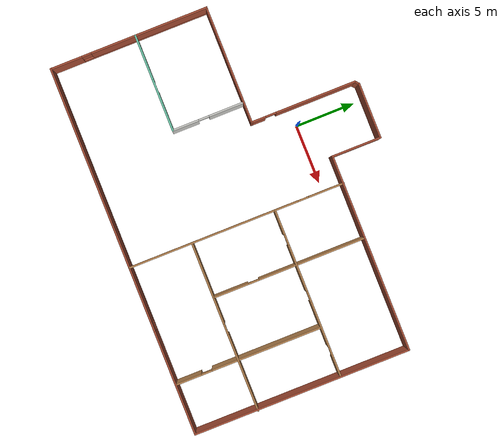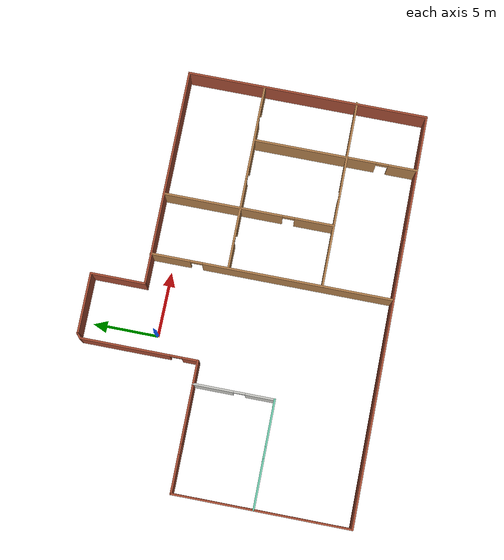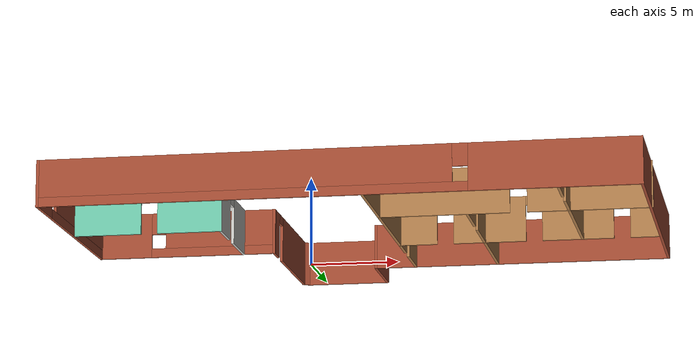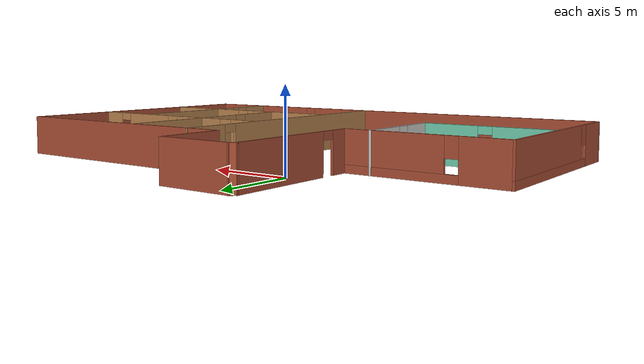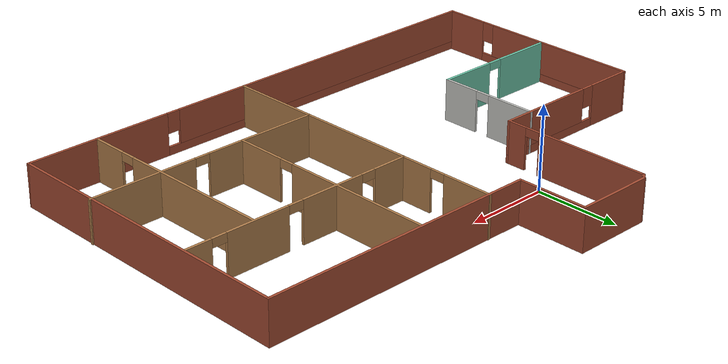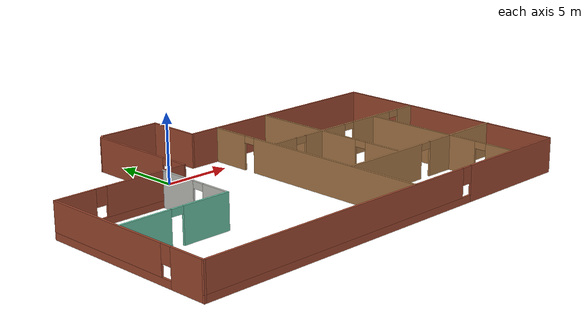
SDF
<?xml version='1.0'?>
<sdf version='1.6'>
  <model name='strange_room_project_1'>
    <pose frame=''>4.41122 -5.53969 0 0 -0 0</pose>
    <link name='Wall_1'>
      <collision name='Wall_1_Collision'>
        <geometry>
          <box>
            <size>4.75 0.15 2.5</size>
          </box>
        </geometry>
        <pose frame=''>0 0 1.25 0 -0 0</pose>
      </collision>
      <visual name='Wall_1_Visual'>
        <pose frame=''>0 0 1.25 0 -0 0</pose>
        <geometry>
          <box>
            <size>4.75 0.15 2.5</size>
          </box>
        </geometry>
        <material>
          <script>
            <uri>file://media/materials/scripts/gazebo.material</uri>
            <name>Gazebo/Bricks</name>
          </script>
          <ambient>0.435294 0.796078 0.67451 1</ambient>
        </material>
        <meta>
          <layer>0</layer>
        </meta>
      </visual>
      <pose frame=''>-3.26123 11.2097 0 0 -0 0</pose>
    </link>
    <link name='Wall_10'>
      <collision name='Wall_10_Collision'>
        <geometry>
          <box>
            <size>0.540512 0.15 2.5</size>
          </box>
        </geometry>
        <pose frame=''>0 0 1.25 0 -0 0</pose>
      </collision>
      <visual name='Wall_10_Visual'>
        <pose frame=''>0 0 1.25 0 -0 0</pose>
        <geometry>
          <box>
            <size>0.540512 0.15 2.5</size>
          </box>
        </geometry>
        <material>
          <script>
            <uri>file://media/materials/scripts/gazebo.material</uri>
            <name>Gazebo/Bricks</name>
          </script>
          <ambient>0.435294 0.796078 0.67451 1</ambient>
        </material>
        <meta>
          <layer>0</layer>
        </meta>
      </visual>
      <pose frame=''>-5.71122 11.0847 0 0 -0 0.694738</pose>
    </link>
    <link name='Wall_12'>
      <pose frame=''>-7.58378 -0.937122 0 0 0 -1.5708</pose>
      <visual name='Wall_12_Visual_0'>
        <pose frame=''>-1.59262 0 1.25 0 -0 0</pose>
        <geometry>
          <box>
            <size>3.06475 0.15 2.5</size>
          </box>
        </geometry>
        <material>
          <script>
            <uri>file://media/materials/scripts/gazebo.material</uri>
            <name>Gazebo/CeilingTiled</name>
          </script>
          <ambient>0.435294 0.796078 0.67451 1</ambient>
        </material>
        <meta>
          <layer>0</layer>
        </meta>
      </visual>
      <collision name='Wall_12_Collision_0'>
        <geometry>
          <box>
            <size>3.06475 0.15 2.5</size>
          </box>
        </geometry>
        <pose frame=''>-1.59262 0 1.25 0 -0 0</pose>
      </collision>
      <visual name='Wall_12_Visual_1'>
        <pose frame=''>1.98238 0 1.25 0 -0 0</pose>
        <geometry>
          <box>
            <size>2.28525 0.15 2.5</size>
          </box>
        </geometry>
        <material>
          <script>
            <uri>file://media/materials/scripts/gazebo.material</uri>
            <name>Gazebo/CeilingTiled</name>
          </script>
          <ambient>0.435294 0.796078 0.67451 1</ambient>
        </material>
        <meta>
          <layer>0</layer>
        </meta>
      </visual>
      <collision name='Wall_12_Collision_1'>
        <geometry>
          <box>
            <size>2.28525 0.15 2.5</size>
          </box>
        </geometry>
        <pose frame=''>1.98238 0 1.25 0 -0 0</pose>
      </collision>
      <visual name='Wall_12_Visual_2'>
        <pose frame=''>0.389755 0 2.25 0 -0 0</pose>
        <geometry>
          <box>
            <size>0.9 0.15 0.5</size>
          </box>
        </geometry>
        <material>
          <script>
            <uri>file://media/materials/scripts/gazebo.material</uri>
            <name>Gazebo/CeilingTiled</name>
          </script>
          <ambient>0.435294 0.796078 0.67451 1</ambient>
        </material>
        <meta>
          <layer>0</layer>
        </meta>
      </visual>
      <collision name='Wall_12_Collision_2'>
        <geometry>
          <box>
            <size>0.9 0.15 0.5</size>
          </box>
        </geometry>
        <pose frame=''>0.389755 0 2.25 0 -0 0</pose>
      </collision>
    </link>
    <link name='Wall_15'>
      <pose frame=''>-11.6338 -3.98712 0 0 -0 3.14159</pose>
      <visual name='Wall_15_Visual_0'>
        <pose frame=''>-2.35227 0 1.25 0 -0 0</pose>
        <geometry>
          <box>
            <size>3.54546 0.15 2.5</size>
          </box>
        </geometry>
        <material>
          <script>
            <uri>file://media/materials/scripts/gazebo.material</uri>
            <name>Gazebo/Grey</name>
          </script>
          <ambient>0.435294 0.796078 0.67451 1</ambient>
        </material>
        <meta>
          <layer>0</layer>
        </meta>
      </visual>
      <collision name='Wall_15_Collision_0'>
        <geometry>
          <box>
            <size>3.54546 0.15 2.5</size>
          </box>
        </geometry>
        <pose frame=''>-2.35227 0 1.25 0 -0 0</pose>
      </collision>
      <visual name='Wall_15_Visual_1'>
        <pose frame=''>2.22273 0 1.25 0 -0 0</pose>
        <geometry>
          <box>
            <size>3.80455 0.15 2.5</size>
          </box>
        </geometry>
        <material>
          <script>
            <uri>file://media/materials/scripts/gazebo.material</uri>
            <name>Gazebo/Grey</name>
          </script>
          <ambient>0.435294 0.796078 0.67451 1</ambient>
        </material>
        <meta>
          <layer>0</layer>
        </meta>
      </visual>
      <collision name='Wall_15_Collision_1'>
        <geometry>
          <box>
            <size>3.80455 0.15 2.5</size>
          </box>
        </geometry>
        <pose frame=''>2.22273 0 1.25 0 -0 0</pose>
      </collision>
      <visual name='Wall_15_Visual_2'>
        <pose frame=''>-0.129545 0 2.25 0 -0 0</pose>
        <geometry>
          <box>
            <size>0.9 0.15 0.5</size>
          </box>
        </geometry>
        <material>
          <script>
            <uri>file://media/materials/scripts/gazebo.material</uri>
            <name>Gazebo/Grey</name>
          </script>
          <ambient>0.435294 0.796078 0.67451 1</ambient>
        </material>
        <meta>
          <layer>0</layer>
        </meta>
      </visual>
      <collision name='Wall_15_Collision_2'>
        <geometry>
          <box>
            <size>0.9 0.15 0.5</size>
          </box>
        </geometry>
        <pose frame=''>-0.129545 0 2.25 0 -0 0</pose>
      </collision>
    </link>
    <link name='Wall_17'>
      <pose frame=''>1.35237 -2.03802 0 0 0 -1.5708</pose>
      <visual name='Wall_17_Visual_0'>
        <pose frame=''>-7.7112 0 1.25 0 -0 0</pose>
        <geometry>
          <box>
            <size>3.07761 0.15 2.5</size>
          </box>
        </geometry>
        <material>
          <script>
            <uri>file://media/materials/scripts/gazebo.material</uri>
            <name>Gazebo/Wood</name>
          </script>
          <ambient>0.435294 0.796078 0.67451 1</ambient>
        </material>
        <meta>
          <layer>0</layer>
        </meta>
      </visual>
      <collision name='Wall_17_Collision_0'>
        <geometry>
          <box>
            <size>3.07761 0.15 2.5</size>
          </box>
        </geometry>
        <pose frame=''>-7.7112 0 1.25 0 -0 0</pose>
      </collision>
      <visual name='Wall_17_Visual_1'>
        <pose frame=''>1.9888 0 1.25 0 -0 0</pose>
        <geometry>
          <box>
            <size>14.5224 0.15 2.5</size>
          </box>
        </geometry>
        <material>
          <script>
            <uri>file://media/materials/scripts/gazebo.material</uri>
            <name>Gazebo/Wood</name>
          </script>
          <ambient>0.435294 0.796078 0.67451 1</ambient>
        </material>
        <meta>
          <layer>0</layer>
        </meta>
      </visual>
      <collision name='Wall_17_Collision_1'>
        <geometry>
          <box>
            <size>14.5224 0.15 2.5</size>
          </box>
        </geometry>
        <pose frame=''>1.9888 0 1.25 0 -0 0</pose>
      </collision>
      <visual name='Wall_17_Visual_2'>
        <pose frame=''>-5.72239 0 2.25 0 -0 0</pose>
        <geometry>
          <box>
            <size>0.9 0.15 0.5</size>
          </box>
        </geometry>
        <material>
          <script>
            <uri>file://media/materials/scripts/gazebo.material</uri>
            <name>Gazebo/Wood</name>
          </script>
          <ambient>0.435294 0.796078 0.67451 1</ambient>
        </material>
        <meta>
          <layer>0</layer>
        </meta>
      </visual>
      <collision name='Wall_17_Collision_2'>
        <geometry>
          <box>
            <size>0.9 0.15 0.5</size>
          </box>
        </geometry>
        <pose frame=''>-5.72239 0 2.25 0 -0 0</pose>
      </collision>
    </link>
    <link name='Wall_19'>
      <pose frame=''>8.46168 1.25779 0 0 -0 0</pose>
      <visual name='Wall_19_Visual_0'>
        <pose frame=''>-6.07739 0 1.25 0 -0 0</pose>
        <geometry>
          <box>
            <size>2.09521 0.15 2.5</size>
          </box>
        </geometry>
        <material>
          <script>
            <uri>file://media/materials/scripts/gazebo.material</uri>
            <name>Gazebo/Wood</name>
          </script>
          <ambient>0.435294 0.796078 0.67451 1</ambient>
        </material>
        <meta>
          <layer>0</layer>
        </meta>
      </visual>
      <collision name='Wall_19_Collision_0'>
        <geometry>
          <box>
            <size>2.09521 0.15 2.5</size>
          </box>
        </geometry>
        <pose frame=''>-6.07739 0 1.25 0 -0 0</pose>
      </collision>
      <visual name='Wall_19_Visual_1'>
        <pose frame=''>-2.13756 0 1.25 0 -0 0</pose>
        <geometry>
          <box>
            <size>3.98446 0.15 2.5</size>
          </box>
        </geometry>
        <material>
          <script>
            <uri>file://media/materials/scripts/gazebo.material</uri>
            <name>Gazebo/Wood</name>
          </script>
          <ambient>0.435294 0.796078 0.67451 1</ambient>
        </material>
        <meta>
          <layer>0</layer>
        </meta>
      </visual>
      <collision name='Wall_19_Collision_1'>
        <geometry>
          <box>
            <size>3.98446 0.15 2.5</size>
          </box>
        </geometry>
        <pose frame=''>-2.13756 0 1.25 0 -0 0</pose>
      </collision>
      <visual name='Wall_19_Visual_2'>
        <pose frame=''>2.70297 0 1.25 0 -0 0</pose>
        <geometry>
          <box>
            <size>3.8966 0.15 2.5</size>
          </box>
        </geometry>
        <material>
          <script>
            <uri>file://media/materials/scripts/gazebo.material</uri>
            <name>Gazebo/Wood</name>
          </script>
          <ambient>0.435294 0.796078 0.67451 1</ambient>
        </material>
        <meta>
          <layer>0</layer>
        </meta>
      </visual>
      <collision name='Wall_19_Collision_2'>
        <geometry>
          <box>
            <size>3.8966 0.15 2.5</size>
          </box>
        </geometry>
        <pose frame=''>2.70297 0 1.25 0 -0 0</pose>
      </collision>
      <visual name='Wall_19_Visual_3'>
        <pose frame=''>6.33814 0 1.25 0 -0 0</pose>
        <geometry>
          <box>
            <size>1.57373 0.15 2.5</size>
          </box>
        </geometry>
        <material>
          <script>
            <uri>file://media/materials/scripts/gazebo.material</uri>
            <name>Gazebo/Wood</name>
          </script>
          <ambient>0.435294 0.796078 0.67451 1</ambient>
        </material>
        <meta>
          <layer>0</layer>
        </meta>
      </visual>
      <collision name='Wall_19_Collision_3'>
        <geometry>
          <box>
            <size>1.57373 0.15 2.5</size>
          </box>
        </geometry>
        <pose frame=''>6.33814 0 1.25 0 -0 0</pose>
      </collision>
      <visual name='Wall_19_Visual_4'>
        <pose frame=''>-4.57979 0 2.25 0 -0 0</pose>
        <geometry>
          <box>
            <size>0.9 0.15 0.5</size>
          </box>
        </geometry>
        <material>
          <script>
            <uri>file://media/materials/scripts/gazebo.material</uri>
            <name>Gazebo/Wood</name>
          </script>
          <ambient>0.435294 0.796078 0.67451 1</ambient>
        </material>
        <meta>
          <layer>0</layer>
        </meta>
      </visual>
      <collision name='Wall_19_Collision_4'>
        <geometry>
          <box>
            <size>0.9 0.15 0.5</size>
          </box>
        </geometry>
        <pose frame=''>-4.57979 0 2.25 0 -0 0</pose>
      </collision>
      <visual name='Wall_19_Visual_5'>
        <pose frame=''>0.304668 0 2.25 0 -0 0</pose>
        <geometry>
          <box>
            <size>0.9 0.15 0.5</size>
          </box>
        </geometry>
        <material>
          <script>
            <uri>file://media/materials/scripts/gazebo.material</uri>
            <name>Gazebo/Wood</name>
          </script>
          <ambient>0.435294 0.796078 0.67451 1</ambient>
        </material>
        <meta>
          <layer>0</layer>
        </meta>
      </visual>
      <collision name='Wall_19_Collision_5'>
        <geometry>
          <box>
            <size>0.9 0.15 0.5</size>
          </box>
        </geometry>
        <pose frame=''>0.304668 0 2.25 0 -0 0</pose>
      </collision>
      <visual name='Wall_19_Visual_6'>
        <pose frame=''>5.10127 0 2.25 0 -0 0</pose>
        <geometry>
          <box>
            <size>0.9 0.15 0.5</size>
          </box>
        </geometry>
        <material>
          <script>
            <uri>file://media/materials/scripts/gazebo.material</uri>
            <name>Gazebo/Wood</name>
          </script>
          <ambient>0.435294 0.796078 0.67451 1</ambient>
        </material>
        <meta>
          <layer>0</layer>
        </meta>
      </visual>
      <collision name='Wall_19_Collision_6'>
        <geometry>
          <box>
            <size>0.9 0.15 0.5</size>
          </box>
        </geometry>
        <pose frame=''>5.10127 0 2.25 0 -0 0</pose>
      </collision>
    </link>
    <link name='Wall_2'>
      <collision name='Wall_2_Collision'>
        <geometry>
          <box>
            <size>4.25 0.15 2.5</size>
          </box>
        </geometry>
        <pose frame=''>0 0 1.25 0 -0 0</pose>
      </collision>
      <visual name='Wall_2_Visual'>
        <pose frame=''>0 0 1.25 0 -0 0</pose>
        <geometry>
          <box>
            <size>4.25 0.15 2.5</size>
          </box>
        </geometry>
        <material>
          <script>
            <uri>file://media/materials/scripts/gazebo.material</uri>
            <name>Gazebo/Bricks</name>
          </script>
          <ambient>0.435294 0.796078 0.67451 1</ambient>
        </material>
        <meta>
          <layer>0</layer>
        </meta>
      </visual>
      <pose frame=''>-0.961225 9.15968 0 0 0 -1.5708</pose>
    </link>
    <link name='Wall_3'>
      <collision name='Wall_3_Collision'>
        <geometry>
          <box>
            <size>16.75 0.15 2.5</size>
          </box>
        </geometry>
        <pose frame=''>0 0 1.25 0 -0 0</pose>
      </collision>
      <visual name='Wall_3_Visual'>
        <pose frame=''>0 0 1.25 0 -0 0</pose>
        <geometry>
          <box>
            <size>16.75 0.15 2.5</size>
          </box>
        </geometry>
        <material>
          <script>
            <uri>file://media/materials/scripts/gazebo.material</uri>
            <name>Gazebo/Bricks</name>
          </script>
          <ambient>0.435294 0.796078 0.67451 1</ambient>
        </material>
        <meta>
          <layer>0</layer>
        </meta>
      </visual>
      <pose frame=''>7.33878 7.10969 0 0 -0 0</pose>
    </link>
    <link name='Wall_4'>
      <collision name='Wall_4_Collision'>
        <geometry>
          <box>
            <size>18.5 0.15 2.5</size>
          </box>
        </geometry>
        <pose frame=''>0 0 1.25 0 -0 0</pose>
      </collision>
      <visual name='Wall_4_Visual'>
        <pose frame=''>0 0 1.25 0 -0 0</pose>
        <geometry>
          <box>
            <size>18.5 0.15 2.5</size>
          </box>
        </geometry>
        <material>
          <script>
            <uri>file://media/materials/scripts/gazebo.material</uri>
            <name>Gazebo/Bricks</name>
          </script>
          <ambient>0.435294 0.796078 0.67451 1</ambient>
        </material>
        <meta>
          <layer>0</layer>
        </meta>
      </visual>
      <pose frame=''>15.6388 -2.06532 0 0 0 -1.5708</pose>
    </link>
    <link name='Wall_5'>
      <pose frame=''>-0.036225 -11.2403 0 0 -0 3.14159</pose>
      <visual name='Wall_5_Visual_0'>
        <pose frame=''>-11.2976 0 1.25 0 -0 0</pose>
        <geometry>
          <box>
            <size>8.90478 0.15 2.5</size>
          </box>
        </geometry>
        <material>
          <script>
            <uri>file://media/materials/scripts/gazebo.material</uri>
            <name>Gazebo/Bricks</name>
          </script>
          <ambient>0.435294 0.796078 0.67451 1</ambient>
        </material>
        <meta>
          <layer>0</layer>
        </meta>
      </visual>
      <collision name='Wall_5_Collision_0'>
        <geometry>
          <box>
            <size>8.90478 0.15 2.5</size>
          </box>
        </geometry>
        <pose frame=''>-11.2976 0 1.25 0 -0 0</pose>
      </collision>
      <visual name='Wall_5_Visual_1'>
        <pose frame=''>4.45239 0 0.25 0 -0 0</pose>
        <geometry>
          <box>
            <size>22.5952 0.15 0.5</size>
          </box>
        </geometry>
        <material>
          <script>
            <uri>file://media/materials/scripts/gazebo.material</uri>
            <name>Gazebo/Bricks</name>
          </script>
          <ambient>0.435294 0.796078 0.67451 1</ambient>
        </material>
        <meta>
          <layer>0</layer>
        </meta>
      </visual>
      <collision name='Wall_5_Collision_1'>
        <geometry>
          <box>
            <size>22.5952 0.15 0.5</size>
          </box>
        </geometry>
        <pose frame=''>4.45239 0 0.25 0 -0 0</pose>
      </collision>
      <visual name='Wall_5_Visual_2'>
        <pose frame=''>4.85239 0 1.5 0 -0 0</pose>
        <geometry>
          <box>
            <size>21.7952 0.15 2</size>
          </box>
        </geometry>
        <material>
          <script>
            <uri>file://media/materials/scripts/gazebo.material</uri>
            <name>Gazebo/Bricks</name>
          </script>
          <ambient>0.435294 0.796078 0.67451 1</ambient>
        </material>
        <meta>
          <layer>0</layer>
        </meta>
      </visual>
      <collision name='Wall_5_Collision_2'>
        <geometry>
          <box>
            <size>21.7952 0.15 2</size>
          </box>
        </geometry>
        <pose frame=''>4.85239 0 1.5 0 -0 0</pose>
      </collision>
      <visual name='Wall_5_Visual_3'>
        <pose frame=''>-6.44522 0 1.9 0 -0 0</pose>
        <geometry>
          <box>
            <size>0.8 0.15 1.2</size>
          </box>
        </geometry>
        <material>
          <script>
            <uri>file://media/materials/scripts/gazebo.material</uri>
            <name>Gazebo/Bricks</name>
          </script>
          <ambient>0.435294 0.796078 0.67451 1</ambient>
        </material>
        <meta>
          <layer>0</layer>
        </meta>
      </visual>
      <collision name='Wall_5_Collision_3'>
        <geometry>
          <box>
            <size>0.8 0.15 1.2</size>
          </box>
        </geometry>
        <pose frame=''>-6.44522 0 1.9 0 -0 0</pose>
      </collision>
    </link>
    <link name='Wall_6'>
      <pose frame=''>-15.7112 -4.56531 0 0 -0 1.5708</pose>
      <visual name='Wall_6_Visual_0'>
        <pose frame=''>-5.38753 0 1.25 0 -0 0</pose>
        <geometry>
          <box>
            <size>2.72495 0.15 2.5</size>
          </box>
        </geometry>
        <material>
          <script>
            <uri>file://media/materials/scripts/gazebo.material</uri>
            <name>Gazebo/Bricks</name>
          </script>
          <ambient>0.435294 0.796078 0.67451 1</ambient>
        </material>
        <meta>
          <layer>0</layer>
        </meta>
      </visual>
      <collision name='Wall_6_Collision_0'>
        <geometry>
          <box>
            <size>2.72495 0.15 2.5</size>
          </box>
        </geometry>
        <pose frame=''>-5.38753 0 1.25 0 -0 0</pose>
      </collision>
      <visual name='Wall_6_Visual_1'>
        <pose frame=''>1.36247 0 0.25 0 -0 0</pose>
        <geometry>
          <box>
            <size>10.7751 0.15 0.5</size>
          </box>
        </geometry>
        <material>
          <script>
            <uri>file://media/materials/scripts/gazebo.material</uri>
            <name>Gazebo/Bricks</name>
          </script>
          <ambient>0.435294 0.796078 0.67451 1</ambient>
        </material>
        <meta>
          <layer>0</layer>
        </meta>
      </visual>
      <collision name='Wall_6_Collision_1'>
        <geometry>
          <box>
            <size>10.7751 0.15 0.5</size>
          </box>
        </geometry>
        <pose frame=''>1.36247 0 0.25 0 -0 0</pose>
      </collision>
      <visual name='Wall_6_Visual_2'>
        <pose frame=''>1.76247 0 1.5 0 -0 0</pose>
        <geometry>
          <box>
            <size>9.97505 0.15 2</size>
          </box>
        </geometry>
        <material>
          <script>
            <uri>file://media/materials/scripts/gazebo.material</uri>
            <name>Gazebo/Bricks</name>
          </script>
          <ambient>0.435294 0.796078 0.67451 1</ambient>
        </material>
        <meta>
          <layer>0</layer>
        </meta>
      </visual>
      <collision name='Wall_6_Collision_2'>
        <geometry>
          <box>
            <size>9.97505 0.15 2</size>
          </box>
        </geometry>
        <pose frame=''>1.76247 0 1.5 0 -0 0</pose>
      </collision>
      <visual name='Wall_6_Visual_3'>
        <pose frame=''>-3.62505 0 1.9 0 -0 0</pose>
        <geometry>
          <box>
            <size>0.8 0.15 1.2</size>
          </box>
        </geometry>
        <material>
          <script>
            <uri>file://media/materials/scripts/gazebo.material</uri>
            <name>Gazebo/Bricks</name>
          </script>
          <ambient>0.435294 0.796078 0.67451 1</ambient>
        </material>
        <meta>
          <layer>0</layer>
        </meta>
      </visual>
      <collision name='Wall_6_Collision_3'>
        <geometry>
          <box>
            <size>0.8 0.15 1.2</size>
          </box>
        </geometry>
        <pose frame=''>-3.62505 0 1.9 0 -0 0</pose>
      </collision>
    </link>
    <link name='Wall_65'>
      <pose frame=''>8.53623 -5.87592 0 0 -0 3.14159</pose>
      <visual name='Wall_65_Visual_0'>
        <pose frame=''>-3.95776 0 1.25 0 -0 0</pose>
        <geometry>
          <box>
            <size>6.58449 0.15 2.5</size>
          </box>
        </geometry>
        <material>
          <script>
            <uri>file://media/materials/scripts/gazebo.material</uri>
            <name>Gazebo/Wood</name>
          </script>
          <ambient>0.435294 0.796078 0.67451 1</ambient>
        </material>
        <meta>
          <layer>0</layer>
        </meta>
      </visual>
      <collision name='Wall_65_Collision_0'>
        <geometry>
          <box>
            <size>6.58449 0.15 2.5</size>
          </box>
        </geometry>
        <pose frame=''>-3.95776 0 1.25 0 -0 0</pose>
      </collision>
      <visual name='Wall_65_Visual_1'>
        <pose frame=''>3.74224 0 1.25 0 -0 0</pose>
        <geometry>
          <box>
            <size>7.01551 0.15 2.5</size>
          </box>
        </geometry>
        <material>
          <script>
            <uri>file://media/materials/scripts/gazebo.material</uri>
            <name>Gazebo/Wood</name>
          </script>
          <ambient>0.435294 0.796078 0.67451 1</ambient>
        </material>
        <meta>
          <layer>0</layer>
        </meta>
      </visual>
      <collision name='Wall_65_Collision_1'>
        <geometry>
          <box>
            <size>7.01551 0.15 2.5</size>
          </box>
        </geometry>
        <pose frame=''>3.74224 0 1.25 0 -0 0</pose>
      </collision>
      <visual name='Wall_65_Visual_2'>
        <pose frame=''>-0.215513 0 2.25 0 -0 0</pose>
        <geometry>
          <box>
            <size>0.9 0.15 0.5</size>
          </box>
        </geometry>
        <material>
          <script>
            <uri>file://media/materials/scripts/gazebo.material</uri>
            <name>Gazebo/Wood</name>
          </script>
          <ambient>0.435294 0.796078 0.67451 1</ambient>
        </material>
        <meta>
          <layer>0</layer>
        </meta>
      </visual>
      <collision name='Wall_65_Collision_2'>
        <geometry>
          <box>
            <size>0.9 0.15 0.5</size>
          </box>
        </geometry>
        <pose frame=''>-0.215513 0 2.25 0 -0 0</pose>
      </collision>
    </link>
    <link name='Wall_7'>
      <pose frame=''>-10.7862 2.10968 0 0 -0 0</pose>
      <visual name='Wall_7_Visual_0'>
        <pose frame=''>-3.51411 0 1.25 0 -0 0</pose>
        <geometry>
          <box>
            <size>2.97177 0.15 2.5</size>
          </box>
        </geometry>
        <material>
          <script>
            <uri>file://media/materials/scripts/gazebo.material</uri>
            <name>Gazebo/Bricks</name>
          </script>
          <ambient>0.435294 0.796078 0.67451 1</ambient>
        </material>
        <meta>
          <layer>0</layer>
        </meta>
      </visual>
      <collision name='Wall_7_Collision_0'>
        <geometry>
          <box>
            <size>2.97177 0.15 2.5</size>
          </box>
        </geometry>
        <pose frame=''>-3.51411 0 1.25 0 -0 0</pose>
      </collision>
      <visual name='Wall_7_Visual_1'>
        <pose frame=''>1.48589 0 0.25 0 -0 0</pose>
        <geometry>
          <box>
            <size>7.02823 0.15 0.5</size>
          </box>
        </geometry>
        <material>
          <script>
            <uri>file://media/materials/scripts/gazebo.material</uri>
            <name>Gazebo/Bricks</name>
          </script>
          <ambient>0.435294 0.796078 0.67451 1</ambient>
        </material>
        <meta>
          <layer>0</layer>
        </meta>
      </visual>
      <collision name='Wall_7_Collision_1'>
        <geometry>
          <box>
            <size>7.02823 0.15 0.5</size>
          </box>
        </geometry>
        <pose frame=''>1.48589 0 0.25 0 -0 0</pose>
      </collision>
      <visual name='Wall_7_Visual_2'>
        <pose frame=''>1.88589 0 1.5 0 -0 0</pose>
        <geometry>
          <box>
            <size>6.22823 0.15 2</size>
          </box>
        </geometry>
        <material>
          <script>
            <uri>file://media/materials/scripts/gazebo.material</uri>
            <name>Gazebo/Bricks</name>
          </script>
          <ambient>0.435294 0.796078 0.67451 1</ambient>
        </material>
        <meta>
          <layer>0</layer>
        </meta>
      </visual>
      <collision name='Wall_7_Collision_2'>
        <geometry>
          <box>
            <size>6.22823 0.15 2</size>
          </box>
        </geometry>
        <pose frame=''>1.88589 0 1.5 0 -0 0</pose>
      </collision>
      <visual name='Wall_7_Visual_3'>
        <pose frame=''>-1.62823 0 1.9 0 -0 0</pose>
        <geometry>
          <box>
            <size>0.8 0.15 1.2</size>
          </box>
        </geometry>
        <material>
          <script>
            <uri>file://media/materials/scripts/gazebo.material</uri>
            <name>Gazebo/Bricks</name>
          </script>
          <ambient>0.435294 0.796078 0.67451 1</ambient>
        </material>
        <meta>
          <layer>0</layer>
        </meta>
      </visual>
      <collision name='Wall_7_Collision_3'>
        <geometry>
          <box>
            <size>0.8 0.15 1.2</size>
          </box>
        </geometry>
        <pose frame=''>-1.62823 0 1.9 0 -0 0</pose>
      </collision>
    </link>
    <link name='Wall_74'>
      <pose frame=''>11.3966 -5.06353 0 0 -0 1.5708</pose>
      <visual name='Wall_74_Visual_0'>
        <pose frame=''>-5.1078 0 1.25 0 -0 0</pose>
        <geometry>
          <box>
            <size>2.2844 0.15 2.5</size>
          </box>
        </geometry>
        <material>
          <script>
            <uri>file://media/materials/scripts/gazebo.material</uri>
            <name>Gazebo/Wood</name>
          </script>
          <ambient>0.435294 0.796078 0.67451 1</ambient>
        </material>
        <meta>
          <layer>0</layer>
        </meta>
      </visual>
      <collision name='Wall_74_Collision_0'>
        <geometry>
          <box>
            <size>2.2844 0.15 2.5</size>
          </box>
        </geometry>
        <pose frame=''>-5.1078 0 1.25 0 -0 0</pose>
      </collision>
      <visual name='Wall_74_Visual_1'>
        <pose frame=''>1.5922 0 1.25 0 -0 0</pose>
        <geometry>
          <box>
            <size>9.3156 0.15 2.5</size>
          </box>
        </geometry>
        <material>
          <script>
            <uri>file://media/materials/scripts/gazebo.material</uri>
            <name>Gazebo/Wood</name>
          </script>
          <ambient>0.435294 0.796078 0.67451 1</ambient>
        </material>
        <meta>
          <layer>0</layer>
        </meta>
      </visual>
      <collision name='Wall_74_Collision_1'>
        <geometry>
          <box>
            <size>9.3156 0.15 2.5</size>
          </box>
        </geometry>
        <pose frame=''>1.5922 0 1.25 0 -0 0</pose>
      </collision>
      <visual name='Wall_74_Visual_2'>
        <pose frame=''>-3.5156 0 2.25 0 -0 0</pose>
        <geometry>
          <box>
            <size>0.9 0.15 0.5</size>
          </box>
        </geometry>
        <material>
          <script>
            <uri>file://media/materials/scripts/gazebo.material</uri>
            <name>Gazebo/Wood</name>
          </script>
          <ambient>0.435294 0.796078 0.67451 1</ambient>
        </material>
        <meta>
          <layer>0</layer>
        </meta>
      </visual>
      <collision name='Wall_74_Collision_2'>
        <geometry>
          <box>
            <size>0.9 0.15 0.5</size>
          </box>
        </geometry>
        <pose frame=''>-3.5156 0 2.25 0 -0 0</pose>
      </collision>
    </link>
    <link name='Wall_76'>
      <pose frame=''>6.03149 0.555756 0 0 -0 1.5708</pose>
      <visual name='Wall_76_Visual_0'>
        <pose frame=''>-4.96159 0 1.25 0 -0 0</pose>
        <geometry>
          <box>
            <size>3.07682 0.15 2.5</size>
          </box>
        </geometry>
        <material>
          <script>
            <uri>file://media/materials/scripts/gazebo.material</uri>
            <name>Gazebo/Wood</name>
          </script>
          <ambient>0.435294 0.796078 0.67451 1</ambient>
        </material>
        <meta>
          <layer>0</layer>
        </meta>
      </visual>
      <collision name='Wall_76_Collision_0'>
        <geometry>
          <box>
            <size>3.07682 0.15 2.5</size>
          </box>
        </geometry>
        <pose frame=''>-4.96159 0 1.25 0 -0 0</pose>
      </collision>
      <visual name='Wall_76_Visual_1'>
        <pose frame=''>1.98841 0 1.25 0 -0 0</pose>
        <geometry>
          <box>
            <size>9.02318 0.15 2.5</size>
          </box>
        </geometry>
        <material>
          <script>
            <uri>file://media/materials/scripts/gazebo.material</uri>
            <name>Gazebo/Wood</name>
          </script>
          <ambient>0.435294 0.796078 0.67451 1</ambient>
        </material>
        <meta>
          <layer>0</layer>
        </meta>
      </visual>
      <collision name='Wall_76_Collision_1'>
        <geometry>
          <box>
            <size>9.02318 0.15 2.5</size>
          </box>
        </geometry>
        <pose frame=''>1.98841 0 1.25 0 -0 0</pose>
      </collision>
      <visual name='Wall_76_Visual_2'>
        <pose frame=''>-2.97318 0 2.25 0 -0 0</pose>
        <geometry>
          <box>
            <size>0.9 0.15 0.5</size>
          </box>
        </geometry>
        <material>
          <script>
            <uri>file://media/materials/scripts/gazebo.material</uri>
            <name>Gazebo/Wood</name>
          </script>
          <ambient>0.435294 0.796078 0.67451 1</ambient>
        </material>
        <meta>
          <layer>0</layer>
        </meta>
      </visual>
      <collision name='Wall_76_Collision_2'>
        <geometry>
          <box>
            <size>0.9 0.15 0.5</size>
          </box>
        </geometry>
        <pose frame=''>-2.97318 0 2.25 0 -0 0</pose>
      </collision>
    </link>
    <link name='Wall_9'>
      <pose frame=''>-5.86123 6.53468 0 0 -0 1.5708</pose>
      <visual name='Wall_9_Visual_0'>
        <pose frame=''>-3.86428 0 1.25 0 -0 0</pose>
        <geometry>
          <box>
            <size>1.27144 0.15 2.5</size>
          </box>
        </geometry>
        <material>
          <script>
            <uri>file://media/materials/scripts/gazebo.material</uri>
            <name>Gazebo/Bricks</name>
          </script>
          <ambient>0.435294 0.796078 0.67451 1</ambient>
        </material>
        <meta>
          <layer>0</layer>
        </meta>
      </visual>
      <collision name='Wall_9_Collision_0'>
        <geometry>
          <box>
            <size>1.27144 0.15 2.5</size>
          </box>
        </geometry>
        <pose frame=''>-3.86428 0 1.25 0 -0 0</pose>
      </collision>
      <visual name='Wall_9_Visual_1'>
        <pose frame=''>1.08572 0 1.25 0 -0 0</pose>
        <geometry>
          <box>
            <size>6.82856 0.15 2.5</size>
          </box>
        </geometry>
        <material>
          <script>
            <uri>file://media/materials/scripts/gazebo.material</uri>
            <name>Gazebo/Bricks</name>
          </script>
          <ambient>0.435294 0.796078 0.67451 1</ambient>
        </material>
        <meta>
          <layer>0</layer>
        </meta>
      </visual>
      <collision name='Wall_9_Collision_1'>
        <geometry>
          <box>
            <size>6.82856 0.15 2.5</size>
          </box>
        </geometry>
        <pose frame=''>1.08572 0 1.25 0 -0 0</pose>
      </collision>
      <visual name='Wall_9_Visual_2'>
        <pose frame=''>-2.77856 0 2.25 0 -0 0</pose>
        <geometry>
          <box>
            <size>0.9 0.15 0.5</size>
          </box>
        </geometry>
        <material>
          <script>
            <uri>file://media/materials/scripts/gazebo.material</uri>
            <name>Gazebo/Bricks</name>
          </script>
          <ambient>0.435294 0.796078 0.67451 1</ambient>
        </material>
        <meta>
          <layer>0</layer>
        </meta>
      </visual>
      <collision name='Wall_9_Collision_2'>
        <geometry>
          <box>
            <size>0.9 0.15 0.5</size>
          </box>
        </geometry>
        <pose frame=''>-2.77856 0 2.25 0 -0 0</pose>
      </collision>
    </link>
    <static>1</static>
  </model>
</sdf>
